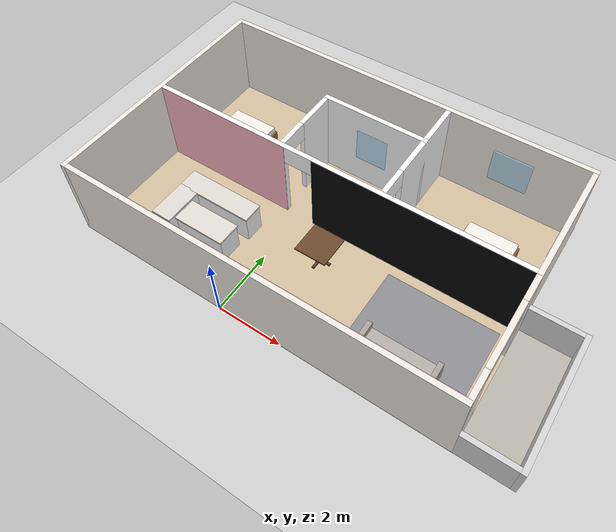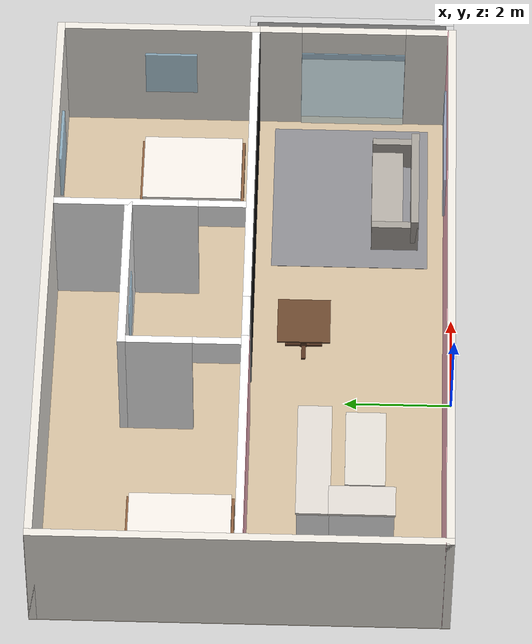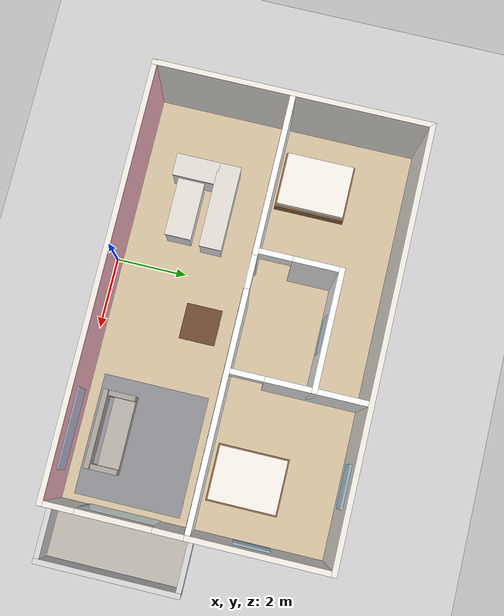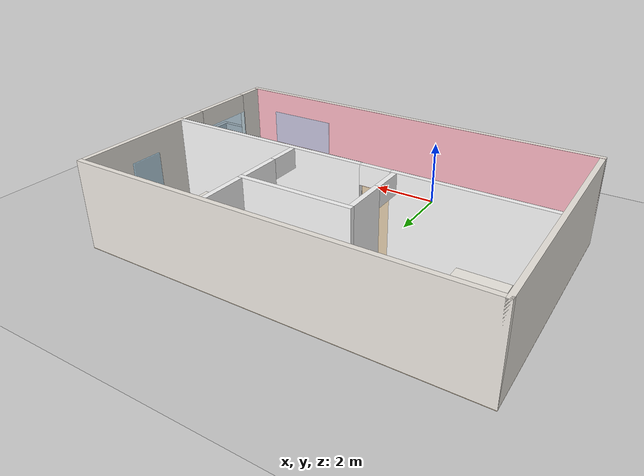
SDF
<sdf version="1.10">
 <world name="default">
  <plugin name="gz::sim::systems::Physics" filename="gz-sim-physics-system"/>
  <plugin name="gz::sim::systems::UserCommands" filename="gz-sim-user-commands-system"/>
  <plugin name="gz::sim::systems::SceneBroadcaster" filename="gz-sim-scene-broadcaster-system"/>
  <gravity>0 0 -9.8000000000000007</gravity>
  <magnetic_field>5.5644999999999998e-06 2.2875799999999999e-05 -4.2388400000000002e-05</magnetic_field>
  <atmosphere type="adiabatic"/>
  <physics type="ode">
   <max_step_size>0.001</max_step_size>
   <real_time_factor>1</real_time_factor>
   <real_time_update_rate>1000</real_time_update_rate>
  </physics>
  <scene>
   <ambient>0.400000006 0.400000006 0.400000006 1</ambient>
   <background>0.699999988 0.699999988 0.699999988 1</background>
   <shadows>true</shadows>
  </scene>
  <include><uri>models://building</uri><name>building</name><pose>-5 0 0 0 0 0</pose></include>
  <include>
   <uri>models://kitchen_island</uri>
   <name>kitchen_island</name>
   <pose>-1.6607910394668579 1.6000000238418579 0 0 0 0</pose>
  </include>
  <include>
   <uri>models://kitchen_counter</uri>
   <name>kitchen_counter</name>
   <pose>-3.1484346389770508 2.25 0 0 0 0</pose>
  </include>
  <include>
   <uri>models://dining_table</uri>
   <name>dining_table</name>
   <pose>1.3739067316055298 2.7999999523162842 0 0 0 0</pose>
  </include>
  <include>
   <uri>models://couch</uri>
   <name>couch</name>
   <pose>4.8018341064453125 1.1000000238418579 0 0 0 0</pose>
  </include>
  <include>
   <uri>models://bed</uri>
   <name>bed_1</name>
   <pose>5.1946086883544922 5.0373001098632812 0 0 0 0</pose>
  </include>
  <include><uri>models://bed</uri><name>bed_2</name><pose>-3.2723948955535889 5 0 0 0 0</pose></include>
  <model name="ground_plane">
   <static>true</static>
   <link name="link">
    <collision name="collision">
     <geometry><plane><normal>0 0 1</normal><size>100 100</size></plane></geometry>
     <surface>
      <contact><collide_bitmask>65535</collide_bitmask></contact>
      <friction><ode><mu>100</mu><mu2>50</mu2></ode></friction>
     </surface>
    </collision>
    <visual name="visual">
     <cast_shadows>false</cast_shadows>
     <geometry><plane><normal>0 0 1</normal><size>100 100</size></plane></geometry>
     <material>
      <script><uri>file://media/materials/scripts/gazebo.material</uri><name>Gazebo/Grey</name></script>
     </material>
    </visual>
    <inertial>
     <mass>1</mass>
     <inertia><ixx>1</ixx><ixy>0</ixy><ixz>0</ixz><iyy>1</iyy><iyz>0</iyz><izz>1</izz></inertia>
    </inertial>
   </link>
  </model>
  <light name="sun" type="directional">
   <pose>0 0 10 0 0 0</pose>
   <intensity>1</intensity>
   <direction>-0.5 0.10000000000000001 -0.90000000000000002</direction>
   <diffuse>0.800000012 0.800000012 0.800000012 1</diffuse>
   <specular>0.200000003 0.200000003 0.200000003 1</specular>
   <attenuation>
    <range>1000</range>
    <linear>0.01</linear>
    <constant>0.90000000000000002</constant>
    <quadratic>0.001</quadratic>
   </attenuation>
   <spot><inner_angle>0</inner_angle><outer_angle>0</outer_angle><falloff>0</falloff></spot>
  </light>
 </world>
</sdf>

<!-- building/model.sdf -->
<sdf version="1.7">
  <model name="building">
    <static>true</static>

    <!-- ─────────────────────────────────────────
         FLOOR SLABS  (top face z=0)
         ───────────────────────────────────────── -->
    <link name="floor_main">
      <pose>6.00 3.845 -0.025 0 0 0</pose>
      <collision name="collision">
        <geometry><box><size>12.00 7.69 0.05</size></box></geometry>
      </collision>
      <visual name="visual">
        <geometry><box><size>12.00 7.69 0.05</size></box></geometry>
        <material>
          <ambient>0.82 0.74 0.62 1</ambient>
          <diffuse>0.82 0.74 0.62 1</diffuse>
          <specular>0.04 0.04 0.04 1</specular>
        </material>
      </visual>
    </link>

    <link name="floor_balcony">
      <pose>12.735 2.005 -0.025 0 0 0</pose>
      <collision name="collision">
        <geometry><box><size>1.47 3.71 0.05</size></box></geometry>
      </collision>
      <visual name="visual">
        <geometry><box><size>1.47 3.71 0.05</size></box></geometry>
        <material>
          <ambient>0.72 0.70 0.66 1</ambient>
          <diffuse>0.72 0.70 0.66 1</diffuse>
          <specular>0.04 0.04 0.04 1</specular>
        </material>
      </visual>
    </link>

    <!-- ─────────────────────────────────────────
         EXTERIOR WALLS  (warm off-white)
         ───────────────────────────────────────── -->
    <link name="wall_south">
      <pose>6.00 0.075 1.35 0 0 0</pose>
      <collision name="collision">
        <geometry><box><size>12.00 0.15 2.70</size></box></geometry>
      </collision>
      <visual name="visual">
        <geometry><box><size>12.00 0.15 2.70</size></box></geometry>
        <material>
          <ambient>0.93 0.91 0.88 1</ambient>
          <diffuse>0.93 0.91 0.88 1</diffuse>
          <specular>0.05 0.05 0.05 1</specular>
        </material>
      </visual>
    </link>

    <link name="wall_north">
      <pose>6.00 7.615 1.35 0 0 0</pose>
      <collision name="collision">
        <geometry><box><size>12.00 0.15 2.70</size></box></geometry>
      </collision>
      <visual name="visual">
        <geometry><box><size>12.00 0.15 2.70</size></box></geometry>
        <material>
          <ambient>0.93 0.91 0.88 1</ambient>
          <diffuse>0.93 0.91 0.88 1</diffuse>
          <specular>0.05 0.05 0.05 1</specular>
        </material>
      </visual>
    </link>

    <link name="wall_west">
      <pose>0.075 3.845 1.35 0 0 0</pose>
      <collision name="collision">
        <geometry><box><size>0.15 7.69 2.70</size></box></geometry>
      </collision>
      <visual name="visual">
        <geometry><box><size>0.15 7.69 2.70</size></box></geometry>
        <material>
          <ambient>0.93 0.91 0.88 1</ambient>
          <diffuse>0.93 0.91 0.88 1</diffuse>
          <specular>0.05 0.05 0.05 1</specular>
        </material>
      </visual>
    </link>

    <!-- East wall — bedroom side only (y=3.93..7.54).
         South side replaced by sliding-door flanks. -->
    <link name="wall_east_bedroom">
      <pose>11.925 5.66 1.35 0 0 0</pose>
      <collision name="collision">
        <geometry><box><size>0.15 3.76 2.70</size></box></geometry>
      </collision>
      <visual name="visual">
        <geometry><box><size>0.15 3.76 2.70</size></box></geometry>
        <material>
          <ambient>0.93 0.91 0.88 1</ambient>
          <diffuse>0.93 0.91 0.88 1</diffuse>
          <specular>0.05 0.05 0.05 1</specular>
        </material>
      </visual>
    </link>

    <!-- ─────────────────────────────────────────
         SLIDING DOOR — living room ↔ balcony
         Door opening: y=0.965..2.965 (2.00 m wide)
         ───────────────────────────────────────── -->
    <link name="wall_door_flank_south">
      <!-- y=0.15..0.965, len=0.815, centre y=0.558 -->
      <pose>11.925 0.558 1.35 0 0 0</pose>
      <collision name="collision">
        <geometry><box><size>0.15 0.815 2.70</size></box></geometry>
      </collision>
      <visual name="visual">
        <geometry><box><size>0.15 0.815 2.70</size></box></geometry>
        <material>
          <ambient>0.93 0.91 0.88 1</ambient>
          <diffuse>0.93 0.91 0.88 1</diffuse>
          <specular>0.05 0.05 0.05 1</specular>
        </material>
      </visual>
    </link>

    <link name="wall_door_flank_north">
      <!-- y=2.965..3.78, len=0.815, centre y=3.373 -->
      <pose>11.925 3.373 1.35 0 0 0</pose>
      <collision name="collision">
        <geometry><box><size>0.15 0.815 2.70</size></box></geometry>
      </collision>
      <visual name="visual">
        <geometry><box><size>0.15 0.815 2.70</size></box></geometry>
        <material>
          <ambient>0.93 0.91 0.88 1</ambient>
          <diffuse>0.93 0.91 0.88 1</diffuse>
          <specular>0.05 0.05 0.05 1</specular>
        </material>
      </visual>
    </link>

    <link name="wall_door_transom">
      <!-- z=2.10..2.70, centre z=2.40 -->
      <pose>11.925 1.965 2.40 0 0 0</pose>
      <collision name="collision">
        <geometry><box><size>0.15 2.00 0.60</size></box></geometry>
      </collision>
      <visual name="visual">
        <geometry><box><size>0.15 2.00 0.60</size></box></geometry>
        <material>
          <ambient>0.93 0.91 0.88 1</ambient>
          <diffuse>0.93 0.91 0.88 1</diffuse>
          <specular>0.05 0.05 0.05 1</specular>
        </material>
      </visual>
    </link>

    <link name="door_balcony_glass">
      <pose>11.84 1.965 1.05 0 0 0</pose>
      <visual name="visual">
        <geometry><box><size>0.02 2.00 2.10</size></box></geometry>
        <material>
          <ambient>0.55 0.80 0.95 1</ambient>
          <diffuse>0.60 0.85 1.00 1</diffuse>
          <specular>0.90 0.95 1.00 1</specular>
        </material>
        <transparency>0.55</transparency>
      </visual>
    </link>

    <!-- ─────────────────────────────────────────
         BALCONY RAILINGS
         ───────────────────────────────────────── -->
    <link name="wall_balcony_south">
      <pose>12.735 0.075 0.55 0 0 0</pose>
      <collision name="collision">
        <geometry><box><size>1.47 0.15 1.10</size></box></geometry>
      </collision>
      <visual name="visual">
        <geometry><box><size>1.47 0.15 1.10</size></box></geometry>
        <material>
          <ambient>0.82 0.82 0.82 1</ambient>
          <diffuse>0.82 0.82 0.82 1</diffuse>
          <specular>0.20 0.20 0.20 1</specular>
        </material>
      </visual>
    </link>

    <link name="wall_balcony_east">
      <pose>13.545 2.005 0.55 0 0 0</pose>
      <collision name="collision">
        <geometry><box><size>0.15 4.01 1.10</size></box></geometry>
      </collision>
      <visual name="visual">
        <geometry><box><size>0.15 4.01 1.10</size></box></geometry>
        <material>
          <ambient>0.82 0.82 0.82 1</ambient>
          <diffuse>0.82 0.82 0.82 1</diffuse>
          <specular>0.20 0.20 0.20 1</specular>
        </material>
      </visual>
    </link>

    <link name="wall_balcony_north">
      <pose>12.735 3.935 0.55 0 0 0</pose>
      <collision name="collision">
        <geometry><box><size>1.47 0.15 1.10</size></box></geometry>
      </collision>
      <visual name="visual">
        <geometry><box><size>1.47 0.15 1.10</size></box></geometry>
        <material>
          <ambient>0.82 0.82 0.82 1</ambient>
          <diffuse>0.82 0.82 0.82 1</diffuse>
          <specular>0.20 0.20 0.20 1</specular>
        </material>
      </visual>
    </link>

    <!-- West segment: x=0.15..4.55, len=4.40, centre x=2.35 -->
    <link name="wall_mid_west">
      <pose>2.35 3.855 1.35 0 0 0</pose>
      <collision name="collision">
        <geometry><box><size>4.40 0.15 2.70</size></box></geometry>
      </collision>
      <visual name="visual">
        <geometry><box><size>4.40 0.15 2.70</size></box></geometry>
        <material>
          <ambient>0.98 0.98 0.98 1</ambient>
          <diffuse>0.98 0.98 0.98 1</diffuse>
          <specular>0.06 0.06 0.06 1</specular>
        </material>
      </visual>
    </link>

    <!-- East segment: x=5.45..11.85, len=6.40, centre x=8.65 -->
    <link name="wall_mid_east">
      <pose>8.65 3.855 1.35 0 0 0</pose>
      <collision name="collision">
        <geometry><box><size>6.40 0.15 2.70</size></box></geometry>
      </collision>
      <visual name="visual">
        <geometry><box><size>6.40 0.15 2.70</size></box></geometry>
        <material>
          <ambient>0.98 0.98 0.98 1</ambient>
          <diffuse>0.98 0.98 0.98 1</diffuse>
          <specular>0.06 0.06 0.06 1</specular>
        </material>
      </visual>
    </link>

    <!-- White accent — kitchen/living interior face of wall_south -->
    <link name="wall_south_north_face">
      <pose>6.00 0.155 1.35 0 0 0</pose>
      <visual name="visual">
        <geometry><box><size>12.00 0.01 2.70</size></box></geometry>
        <material>
          <ambient>0.98 0.71 0.76 1</ambient>
          <diffuse>0.98 0.71 0.76 1</diffuse>
          <specular>0.05 0.05 0.05 1</specular>
        </material>
      </visual>
    </link>

    <!-- White accent — kitchen face of wall_mid_west (south side) -->
    <link name="wall_mid_west_south_face">
      <pose>2.35 3.775 1.35 0 0 0</pose>
      <visual name="visual">
        <geometry><box><size>4.40 0.01 2.70</size></box></geometry>
        <material>
          <ambient>0.98 0.71 0.76 1</ambient>
          <diffuse>0.98 0.71 0.76 1</diffuse>
          <specular>0.05 0.05 0.05 1</specular>
        </material>
      </visual>
    </link>

    <!-- Black accent — living-room face of wall_mid_east -->
    <link name="wall_mid_east_south_face">
      <pose>8.65 3.775 1.35 0 0 0</pose>
      <visual name="visual">
        <geometry><box><size>6.40 0.01 2.70</size></box></geometry>
        <material>
          <ambient>0.02 0.02 0.02 1</ambient>
          <diffuse>0.02 0.02 0.02 1</diffuse>
          <specular>0.05 0.05 0.05 1</specular>
        </material>
      </visual>
    </link>

    <!-- Transom above mid-wall door -->
    <link name="wall_mid_door_transom">
      <pose>5.00 3.855 2.40 0 0 0</pose>
      <collision name="collision">
        <geometry><box><size>0.90 0.15 0.60</size></box></geometry>
      </collision>
      <visual name="visual">
        <geometry><box><size>0.90 0.15 0.60</size></box></geometry>
        <material>
          <ambient>0.98 0.98 0.98 1</ambient>
          <diffuse>0.98 0.98 0.98 1</diffuse>
          <specular>0.06 0.06 0.06 1</specular>
        </material>
      </visual>
    </link>

    <!-- Upper segment: y=4.83..6.06, len=1.23, centre y=5.445 -->
    <link name="wall_bed2_west_upper">
      <pose>4.415 5.445 1.35 0 0 0</pose>
      <collision name="collision">
        <geometry><box><size>0.15 1.23 2.70</size></box></geometry>
      </collision>
      <visual name="visual">
        <geometry><box><size>0.15 1.23 2.70</size></box></geometry>
        <material>
          <ambient>0.98 0.98 0.98 1</ambient>
          <diffuse>0.98 0.98 0.98 1</diffuse>
          <specular>0.06 0.06 0.06 1</specular>
        </material>
      </visual>
    </link>

    <!-- Transom above bedroom-2 door: y=3.93..4.83, z=2.10..2.70 -->
    <link name="wall_bed2_door_transom">
      <pose>4.415 4.38 2.40 0 0 0</pose>
      <collision name="collision">
        <geometry><box><size>0.15 0.90 0.60</size></box></geometry>
      </collision>
      <visual name="visual">
        <geometry><box><size>0.15 0.90 0.60</size></box></geometry>
        <material>
          <ambient>0.98 0.98 0.98 1</ambient>
          <diffuse>0.98 0.98 0.98 1</diffuse>
          <specular>0.06 0.06 0.06 1</specular>
        </material>
      </visual>
    </link>

    <!-- Bedroom-2 north wall: closes room at y=6.06
         x=4.49..7.54, len=3.05, centre x=6.015       -->
    <link name="wall_bed2_north">
      <pose>6.015 6.135 1.35 0 0 0</pose>
      <collision name="collision">
        <geometry><box><size>3.35 0.15 2.70</size></box></geometry>
      </collision>
      <visual name="visual">
        <geometry><box><size>3.35 0.15 2.70</size></box></geometry>
        <material>
          <ambient>0.98 0.98 0.98 1</ambient>
          <diffuse>0.98 0.98 0.98 1</diffuse>
          <specular>0.06 0.06 0.06 1</specular>
        </material>
      </visual>
    </link>

    <!-- Upper segment: y=4.83..7.54, len=2.71, centre y=6.185 -->
    <link name="wall_bed1_west_upper">
      <pose>7.615 6.185 1.35 0 0 0</pose>
      <collision name="collision">
        <geometry><box><size>0.15 2.71 2.70</size></box></geometry>
      </collision>
      <visual name="visual">
        <geometry><box><size>0.15 2.71 2.70</size></box></geometry>
        <material>
          <ambient>0.98 0.98 0.98 1</ambient>
          <diffuse>0.98 0.98 0.98 1</diffuse>
          <specular>0.06 0.06 0.06 1</specular>
        </material>
      </visual>
    </link>

    <!-- Transom above bedroom-1 door -->
    <link name="wall_bed1_door_transom">
      <pose>7.615 4.38 2.40 0 0 0</pose>
      <collision name="collision">
        <geometry><box><size>0.15 0.90 0.60</size></box></geometry>
      </collision>
      <visual name="visual">
        <geometry><box><size>0.15 0.90 0.60</size></box></geometry>
        <material>
          <ambient>0.98 0.98 0.98 1</ambient>
          <diffuse>0.98 0.98 0.98 1</diffuse>
          <specular>0.06 0.06 0.06 1</specular>
        </material>
      </visual>
    </link>

    <!-- Bedroom 1 north window -->
    <link name="window_bed1_north">
      <pose>9.77 7.52 1.45 0 0 0</pose>
      <visual name="visual">
        <geometry><box><size>1.20 0.06 1.10</size></box></geometry>
        <material>
          <ambient>0.55 0.80 0.95 1</ambient>
          <diffuse>0.60 0.85 1.00 1</diffuse>
          <specular>0.90 0.95 1.00 1</specular>
        </material>
        <transparency>0.50</transparency>
      </visual>
    </link>

    <!-- Bedroom 1 east window -->
    <link name="window_bed1_east">
      <pose>11.83 5.50 1.45 0 0 0</pose>
      <visual name="visual">
        <geometry><box><size>0.06 1.00 1.10</size></box></geometry>
        <material>
          <ambient>0.55 0.80 0.95 1</ambient>
          <diffuse>0.60 0.85 1.00 1</diffuse>
          <specular>0.90 0.95 1.00 1</specular>
        </material>
        <transparency>0.50</transparency>
      </visual>
    </link>

    <!-- Bedroom 2 north window -->
    <link name="window_bed2_north">
      <pose>6.015 6.07 1.45 0 0 0</pose>
      <visual name="visual">
        <geometry><box><size>1.00 0.06 1.10</size></box></geometry>
        <material>
          <ambient>0.55 0.80 0.95 1</ambient>
          <diffuse>0.60 0.85 1.00 1</diffuse>
          <specular>0.90 0.95 1.00 1</specular>
        </material>
        <transparency>0.50</transparency>
      </visual>
    </link>

    <!-- Living / kitchen south window -->
    <link name="window_living_south">
      <pose>9.955 0.17 1.45 0 0 0</pose>
      <visual name="visual">
        <geometry><box><size>2.20 0.06 1.10</size></box></geometry>
        <material>
          <ambient>0.55 0.80 0.95 1</ambient>
          <diffuse>0.60 0.85 1.00 1</diffuse>
          <specular>0.90 0.95 1.00 1</specular>
        </material>
        <transparency>0.50</transparency>
      </visual>
    </link>

    <!-- ─────────────────────────────────────────
         CARPET — living room
         3.40 × 3.00 m, centred, 6 mm thick
         ───────────────────────────────────────── -->
    <link name="carpet_living">
      <pose>9.955 1.965 0.003 0 0 0</pose>
      <collision name="collision">
        <geometry><box><size>3.40 3.00 0.006</size></box></geometry>
      </collision>
      <visual name="visual">
        <geometry><box><size>3.40 3.00 0.006</size></box></geometry>
        <material>
          <ambient>0.52 0.52 0.54 1</ambient>
          <diffuse>0.55 0.55 0.57 1</diffuse>
          <specular>0.02 0.02 0.02 1</specular>
        </material>
      </visual>
    </link>

  </model>
</sdf>

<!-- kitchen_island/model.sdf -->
<sdf version="1.7">
  <model name="kitchen_island">
    <static>true</static>

    <!-- Cabinet body: 1.60 × 0.70 × 0.86 m -->
    <link name="cabinet">
      <pose>0 0 0.43 0 0 0</pose>
      <collision name="collision">
        <geometry><box><size>1.60 0.70 0.86</size></box></geometry>
      </collision>
      <visual name="visual">
        <geometry><box><size>1.60 0.70 0.86</size></box></geometry>
        <material>
          <ambient>0.95 0.95 0.95 1</ambient>
          <diffuse>0.95 0.95 0.95 1</diffuse>
          <specular>0.30 0.30 0.30 1</specular>
        </material>
      </visual>
    </link>

    <!-- Counter top: marble/stone look, slightly overhanging -->
    <link name="counter_top">
      <pose>0 0 0.875 0 0 0</pose>
      <collision name="collision">
        <geometry><box><size>1.65 0.75 0.05</size></box></geometry>
      </collision>
      <visual name="visual">
        <geometry><box><size>1.65 0.75 0.05</size></box></geometry>
        <material>
          <ambient>0.85 0.83 0.80 1</ambient>
          <diffuse>0.88 0.86 0.83 1</diffuse>
          <specular>0.40 0.40 0.40 1</specular>
        </material>
      </visual>
    </link>

  </model>
</sdf>

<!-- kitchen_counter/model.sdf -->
<sdf version="1.7">
  <model name="kitchen_counter">
    <static>true</static>

    <!-- Back run cabinet body -->
    <link name="cabinet_back">
      <!-- local origin at SW corner; centre offset -->
      <pose>1.20 0.30 0.44 0 0 0</pose>
      <collision name="collision">
        <geometry><box><size>2.40 0.60 0.88</size></box></geometry>
      </collision>
      <visual name="visual">
        <geometry><box><size>2.40 0.60 0.88</size></box></geometry>
        <material>
          <ambient>0.96 0.96 0.96 1</ambient>
          <diffuse>0.96 0.96 0.96 1</diffuse>
          <specular>0.25 0.25 0.25 1</specular>
        </material>
      </visual>
    </link>

    <!-- Back run counter top (stone/marble) -->
    <link name="top_back">
      <pose>1.20 0.30 0.905 0 0 0</pose>
      <collision name="collision">
        <geometry><box><size>2.44 0.64 0.05</size></box></geometry>
      </collision>
      <visual name="visual">
        <geometry><box><size>2.44 0.64 0.05</size></box></geometry>
        <material>
          <ambient>0.84 0.82 0.79 1</ambient>
          <diffuse>0.87 0.85 0.82 1</diffuse>
          <specular>0.45 0.45 0.45 1</specular>
        </material>
      </visual>
    </link>

    <!-- Sink basin (depressed, stainless look) — sits in back-run top -->
    <link name="sink_basin">
      <pose>1.80 0.28 0.895 0 0 0</pose>
      <collision name="collision">
        <geometry><box><size>0.50 0.38 0.02</size></box></geometry>
      </collision>
      <visual name="visual">
        <geometry><box><size>0.50 0.38 0.02</size></box></geometry>
        <material>
          <ambient>0.70 0.72 0.72 1</ambient>
          <diffuse>0.75 0.77 0.77 1</diffuse>
          <specular>0.80 0.80 0.80 1</specular>
        </material>
      </visual>
    </link>

    <!-- Side run cabinet body -->
    <link name="cabinet_side">
      <pose>0.30 -0.60 0.44 0 0 0</pose>
      <collision name="collision">
        <geometry><box><size>0.60 1.20 0.88</size></box></geometry>
      </collision>
      <visual name="visual">
        <geometry><box><size>0.60 1.20 0.88</size></box></geometry>
        <material>
          <ambient>0.96 0.96 0.96 1</ambient>
          <diffuse>0.96 0.96 0.96 1</diffuse>
          <specular>0.25 0.25 0.25 1</specular>
        </material>
      </visual>
    </link>

    <!-- Side run counter top -->
    <link name="top_side">
      <pose>0.30 -0.60 0.905 0 0 0</pose>
      <collision name="collision">
        <geometry><box><size>0.64 1.24 0.05</size></box></geometry>
      </collision>
      <visual name="visual">
        <geometry><box><size>0.64 1.24 0.05</size></box></geometry>
        <material>
          <ambient>0.84 0.82 0.79 1</ambient>
          <diffuse>0.87 0.85 0.82 1</diffuse>
          <specular>0.45 0.45 0.45 1</specular>
        </material>
      </visual>
    </link>

  </model>
</sdf>

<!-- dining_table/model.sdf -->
<sdf version="1.7">
  <model name="dining_table">
    <static>true</static>

    <!-- Table top: 1.0 × 1.0 × 0.04 m, surface at z=0.76 -->
    <link name="top">
      <pose>0 0 0.74 0 0 0</pose>
      <collision name="collision">
        <geometry><box><size>1.00 1.00 0.04</size></box></geometry>
      </collision>
      <visual name="visual">
        <geometry><box><size>1.00 1.00 0.04</size></box></geometry>
        <material>
          <ambient>0.42 0.28 0.18 1</ambient>
          <diffuse>0.42 0.28 0.18 1</diffuse>
          <specular>0.15 0.10 0.05 1</specular>
        </material>
      </visual>
    </link>

    <!-- Central pedestal: 0.12 × 0.12 × 0.72 m -->
    <link name="pedestal">
      <pose>0 0 0.36 0 0 0</pose>
      <collision name="collision">
        <geometry><box><size>0.12 0.12 0.72</size></box></geometry>
      </collision>
      <visual name="visual">
        <geometry><box><size>0.12 0.12 0.72</size></box></geometry>
        <material>
          <ambient>0.35 0.22 0.14 1</ambient>
          <diffuse>0.35 0.22 0.14 1</diffuse>
          <specular>0.10 0.07 0.04 1</specular>
        </material>
      </visual>
    </link>

    <!-- Base cross-feet: two thin bars at z=0.04 -->
    <link name="foot_ns">
      <pose>0 0 0.025 0 0 0</pose>
      <collision name="collision">
        <geometry><box><size>0.08 0.70 0.05</size></box></geometry>
      </collision>
      <visual name="visual">
        <geometry><box><size>0.08 0.70 0.05</size></box></geometry>
        <material>
          <ambient>0.35 0.22 0.14 1</ambient>
          <diffuse>0.35 0.22 0.14 1</diffuse>
          <specular>0.10 0.07 0.04 1</specular>
        </material>
      </visual>
    </link>

    <link name="foot_ew">
      <pose>0 0 0.025 0 0 1.5708</pose>
      <collision name="collision">
        <geometry><box><size>0.08 0.70 0.05</size></box></geometry>
      </collision>
      <visual name="visual">
        <geometry><box><size>0.08 0.70 0.05</size></box></geometry>
        <material>
          <ambient>0.35 0.22 0.14 1</ambient>
          <diffuse>0.35 0.22 0.14 1</diffuse>
          <specular>0.10 0.07 0.04 1</specular>
        </material>
      </visual>
    </link>

  </model>
</sdf>

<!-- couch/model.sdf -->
<sdf version="1.7">
  <model name="couch">
    <static>true</static>

    <!-- Seat cushion -->
    <link name="seat">
      <pose>0 0.15 0.225 0 0 0</pose>
      <collision name="collision">
        <geometry><box><size>2.20 0.60 0.45</size></box></geometry>
      </collision>
      <visual name="visual">
        <geometry><box><size>2.20 0.60 0.45</size></box></geometry>
        <material>
          <ambient>0.70 0.68 0.65 1</ambient>
          <diffuse>0.70 0.68 0.65 1</diffuse>
          <specular>0.03 0.03 0.03 1</specular>
        </material>
      </visual>
    </link>

    <!-- Backrest -->
    <link name="backrest">
      <pose>0 -0.375 0.55 0 0 0</pose>
      <collision name="collision">
        <geometry><box><size>2.20 0.15 0.65</size></box></geometry>
      </collision>
      <visual name="visual">
        <geometry><box><size>2.20 0.15 0.65</size></box></geometry>
        <material>
          <ambient>0.65 0.63 0.60 1</ambient>
          <diffuse>0.65 0.63 0.60 1</diffuse>
          <specular>0.03 0.03 0.03 1</specular>
        </material>
      </visual>
    </link>

    <!-- Left armrest -->
    <link name="armrest_left">
      <pose>-1.025 0 0.35 0 0 0</pose>
      <collision name="collision">
        <geometry><box><size>0.15 0.90 0.70</size></box></geometry>
      </collision>
      <visual name="visual">
        <geometry><box><size>0.15 0.90 0.70</size></box></geometry>
        <material>
          <ambient>0.65 0.63 0.60 1</ambient>
          <diffuse>0.65 0.63 0.60 1</diffuse>
          <specular>0.03 0.03 0.03 1</specular>
        </material>
      </visual>
    </link>

    <!-- Right armrest -->
    <link name="armrest_right">
      <pose>1.025 0 0.35 0 0 0</pose>
      <collision name="collision">
        <geometry><box><size>0.15 0.90 0.70</size></box></geometry>
      </collision>
      <visual name="visual">
        <geometry><box><size>0.15 0.90 0.70</size></box></geometry>
        <material>
          <ambient>0.65 0.63 0.60 1</ambient>
          <diffuse>0.65 0.63 0.60 1</diffuse>
          <specular>0.03 0.03 0.03 1</specular>
        </material>
      </visual>
    </link>

  </model>
</sdf>

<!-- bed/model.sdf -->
<sdf version="1.7">
  <model name="bed">
    <static>true</static>

    <link name="frame">
      <pose>0 0 0.175 0 0 0</pose>
      <collision name="collision">
        <geometry><box><size>1.60 2.00 0.35</size></box></geometry>
      </collision>
      <visual name="visual">
        <geometry><box><size>1.60 2.00 0.35</size></box></geometry>
        <material>
          <ambient>0.55 0.38 0.25 1</ambient>
          <diffuse>0.55 0.38 0.25 1</diffuse>
          <specular>0.05 0.05 0.05 1</specular>
        </material>
      </visual>
    </link>

    <link name="mattress">
      <pose>0 0 0.45 0 0 0</pose>
      <collision name="collision">
        <geometry><box><size>1.50 1.90 0.20</size></box></geometry>
      </collision>
      <visual name="visual">
        <geometry><box><size>1.50 1.90 0.20</size></box></geometry>
        <material>
          <ambient>0.95 0.93 0.90 1</ambient>
          <diffuse>0.95 0.93 0.90 1</diffuse>
          <specular>0.02 0.02 0.02 1</specular>
        </material>
      </visual>
    </link>

  </model>
</sdf>
